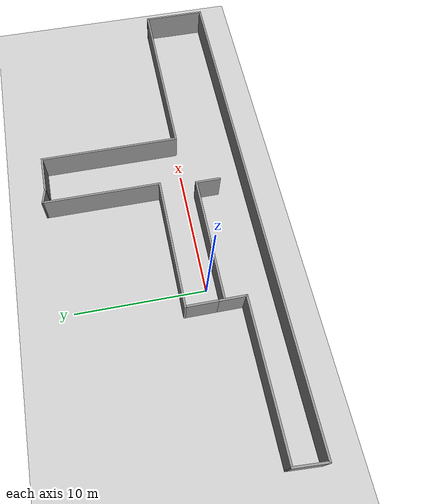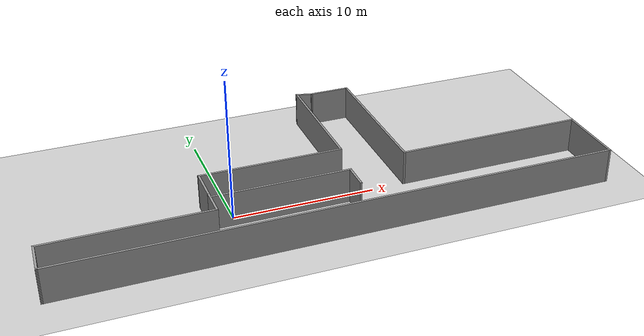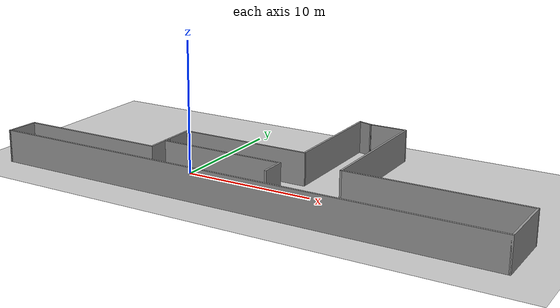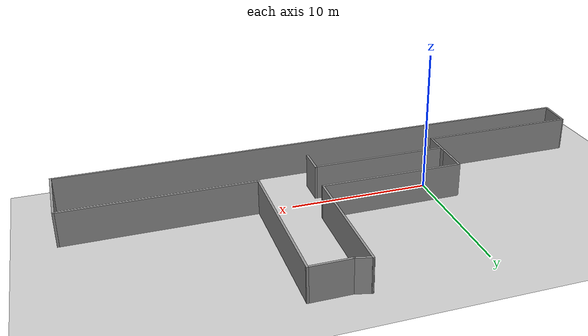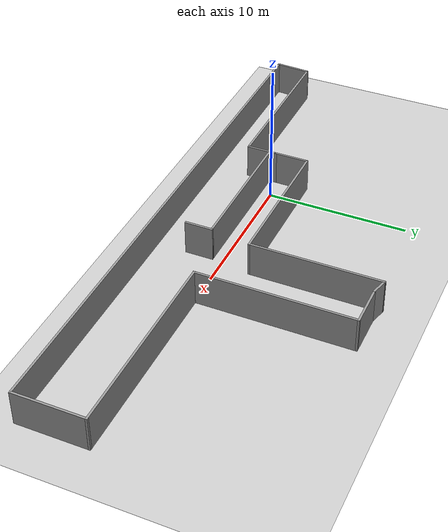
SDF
<sdf version="1.6">
 <world name="default">
  <light name="sun" type="directional">
   <pose>0 0 10 0 -0 0</pose>
   <diffuse>0.8 0.8 0.8 1</diffuse>
   <specular>0.2 0.2 0.2 1</specular>
   <attenuation>
    <range>1000</range>
    <constant>0.9</constant>
    <linear>0.01</linear>
    <quadratic>0.001</quadratic>
   </attenuation>
   <direction>-0.5 0.1 -0.9</direction>
  </light>
  <model name="ground_plane">
   <static>1</static>
   <link name="link">
    <collision name="collision">
     <geometry><plane><normal>0 0 1</normal><size>100 100</size></plane></geometry>
     <surface>
      <contact><collide_bitmask>65535</collide_bitmask></contact>
      <friction><ode><mu>100</mu><mu2>50</mu2></ode></friction>
     </surface>
    </collision>
    <visual name="visual">
     <cast_shadows>0</cast_shadows>
     <geometry><plane><normal>0 0 1</normal><size>100 100</size></plane></geometry>
     <material>
      <script><uri>file://media/materials/scripts/gazebo.material</uri><name>Gazebo/Grey</name></script>
     </material>
    </visual>
   </link>
  </model>
  <gravity>0 0 -9.8</gravity>
  <magnetic_field>6e-06 2.3e-05 -4.2e-05</magnetic_field>
  <atmosphere type="adiabatic"/>
  <physics name="default_physics" default="0" type="ode">
   <max_step_size>0.001</max_step_size>
   <real_time_factor>1</real_time_factor>
   <real_time_update_rate>1000</real_time_update_rate>
  </physics>
  <scene><ambient>0.4 0.4 0.4 1</ambient><background>0.7 0.7 0.7 1</background><shadows>1</shadows></scene>
  <spherical_coordinates>
   <surface_model>EARTH_WGS84</surface_model>
   <latitude_deg>0</latitude_deg>
   <longitude_deg>0</longitude_deg>
   <elevation>0</elevation>
   <heading_deg>0</heading_deg>
  </spherical_coordinates>
  <model name="tbuild_0">
   <pose>6.27677 3.15114 0 0 -0 0</pose>
   <link name="Wall_27">
    <collision name="Wall_27_Collision">
     <geometry><box><size>39 0.15 2.5</size></box></geometry>
     <pose>0 0 1.25 0 -0 0</pose>
    </collision>
    <visual name="Wall_27_Visual">
     <pose>0 0 1.25 0 -0 0</pose>
     <geometry><box><size>39 0.15 2.5</size></box></geometry>
     <material>
      <script><uri>file://media/materials/scripts/gazebo.material</uri><name>Gazebo/Grey</name></script>
      <ambient>1 1 1 1</ambient>
     </material>
     <meta><layer>0</layer></meta>
    </visual>
    <pose>0.002054 -7.99872 0 0 -0 0</pose>
   </link>
   <link name="Wall_28">
    <collision name="Wall_28_Collision">
     <geometry><box><size>5 0.15 2.5</size></box></geometry>
     <pose>0 0 1.25 0 -0 0</pose>
    </collision>
    <visual name="Wall_28_Visual">
     <pose>0 0 1.25 0 -0 0</pose>
     <geometry><box><size>5 0.15 2.5</size></box></geometry>
     <material>
      <script><uri>file://media/materials/scripts/gazebo.material</uri><name>Gazebo/Grey</name></script>
      <ambient>1 1 1 1</ambient>
     </material>
     <meta><layer>0</layer></meta>
    </visual>
    <pose>19.4271 -5.57372 0 0 -0 1.5708</pose>
   </link>
   <link name="Wall_29">
    <collision name="Wall_29_Collision">
     <geometry><box><size>13.5 0.15 2.5</size></box></geometry>
     <pose>0 0 1.25 0 -0 0</pose>
    </collision>
    <visual name="Wall_29_Visual">
     <pose>0 0 1.25 0 -0 0</pose>
     <geometry><box><size>13.5 0.15 2.5</size></box></geometry>
     <material>
      <script><uri>file://media/materials/scripts/gazebo.material</uri><name>Gazebo/Grey</name></script>
      <ambient>1 1 1 1</ambient>
     </material>
     <meta><layer>0</layer></meta>
    </visual>
    <pose>12.7521 -3.14872 0 0 -0 3.14159</pose>
   </link>
   <link name="Wall_30">
    <collision name="Wall_30_Collision">
     <geometry><box><size>11 0.15 2.5</size></box></geometry>
     <pose>0 0 1.25 0 -0 0</pose>
    </collision>
    <visual name="Wall_30_Visual">
     <pose>0 0 1.25 0 -0 0</pose>
     <geometry><box><size>11 0.15 2.5</size></box></geometry>
     <material>
      <script><uri>file://media/materials/scripts/gazebo.material</uri><name>Gazebo/Grey</name></script>
      <ambient>1 1 1 1</ambient>
     </material>
     <meta><layer>0</layer></meta>
    </visual>
    <pose>6.07705 2.27628 0 0 -0 1.5708</pose>
   </link>
   <link name="Wall_31">
    <collision name="Wall_31_Collision">
     <geometry><box><size>3 0.15 2.5</size></box></geometry>
     <pose>0 0 1.25 0 -0 0</pose>
    </collision>
    <visual name="Wall_31_Visual">
     <pose>0 0 1.25 0 -0 0</pose>
     <geometry><box><size>3 0.15 2.5</size></box></geometry>
     <material>
      <script><uri>file://media/materials/scripts/gazebo.material</uri><name>Gazebo/Grey</name></script>
      <ambient>1 1 1 1</ambient>
     </material>
     <meta><layer>0</layer></meta>
    </visual>
    <pose>4.65205 7.70128 0 0 -0 3.14159</pose>
   </link>
   <link name="Wall_32">
    <collision name="Wall_32_Collision">
     <geometry><box><size>1.25 0.15 2.5</size></box></geometry>
     <pose>0 0 1.25 0 -0 0</pose>
    </collision>
    <visual name="Wall_32_Visual">
     <pose>0 0 1.25 0 -0 0</pose>
     <geometry><box><size>1.25 0.15 2.5</size></box></geometry>
     <material>
      <script><uri>file://media/materials/scripts/gazebo.material</uri><name>Gazebo/Grey</name></script>
      <ambient>1 1 1 1</ambient>
     </material>
     <meta><layer>0</layer></meta>
    </visual>
    <pose>2.69579 7.84363 0 0 -0 2.87979</pose>
   </link>
   <link name="Wall_33">
    <collision name="Wall_33_Collision">
     <geometry><box><size>9.25 0.15 2.5</size></box></geometry>
     <pose>0 0 1.25 0 -0 0</pose>
    </collision>
    <visual name="Wall_33_Visual">
     <pose>0 0 1.25 0 -0 0</pose>
     <geometry><box><size>9.25 0.15 2.5</size></box></geometry>
     <material>
      <script><uri>file://media/materials/scripts/gazebo.material</uri><name>Gazebo/Grey</name></script>
      <ambient>1 1 1 1</ambient>
     </material>
     <meta><layer>0</layer></meta>
    </visual>
    <pose>2.16454 3.43598 0 0 0 -1.5708</pose>
   </link>
   <link name="Wall_34">
    <collision name="Wall_34_Collision">
     <geometry><box><size>10.25 0.15 2.5</size></box></geometry>
     <pose>0 0 1.25 0 -0 0</pose>
    </collision>
    <visual name="Wall_34_Visual">
     <pose>0 0 1.25 0 -0 0</pose>
     <geometry><box><size>10.25 0.15 2.5</size></box></geometry>
     <material>
      <script><uri>file://media/materials/scripts/gazebo.material</uri><name>Gazebo/Grey</name></script>
      <ambient>1 1 1 1</ambient>
     </material>
     <meta><layer>0</layer></meta>
    </visual>
    <pose>-2.88546 -1.11402 0 0 -0 3.14159</pose>
   </link>
   <link name="Wall_35">
    <collision name="Wall_35_Collision">
     <geometry><box><size>2.5 0.15 2.5</size></box></geometry>
     <pose>0 0 1.25 0 -0 0</pose>
    </collision>
    <visual name="Wall_35_Visual">
     <pose>0 0 1.25 0 -0 0</pose>
     <geometry><box><size>2.5 0.15 2.5</size></box></geometry>
     <material>
      <script><uri>file://media/materials/scripts/gazebo.material</uri><name>Gazebo/Grey</name></script>
      <ambient>1 1 1 1</ambient>
     </material>
     <meta><layer>0</layer></meta>
    </visual>
    <pose>-7.93546 -2.28902 0 0 0 -1.5708</pose>
   </link>
   <link name="Wall_36">
    <collision name="Wall_36_Collision">
     <geometry><box><size>2.25 0.15 2.5</size></box></geometry>
     <pose>0 0 1.25 0 -0 0</pose>
    </collision>
    <visual name="Wall_36_Visual">
     <pose>0 0 1.25 0 -0 0</pose>
     <geometry><box><size>2.25 0.15 2.5</size></box></geometry>
     <material>
      <script><uri>file://media/materials/scripts/gazebo.material</uri><name>Gazebo/Grey</name></script>
      <ambient>1 1 1 1</ambient>
     </material>
     <meta><layer>0</layer></meta>
    </visual>
    <pose>-7.93546 -4.51402 0 0 0 -1.5708</pose>
   </link>
   <link name="Wall_37">
    <collision name="Wall_37_Collision">
     <geometry><box><size>11.5 0.15 2.5</size></box></geometry>
     <pose>0 0 1.25 0 -0 0</pose>
    </collision>
    <visual name="Wall_37_Visual">
     <pose>0 0 1.25 0 -0 0</pose>
     <geometry><box><size>11.5 0.15 2.5</size></box></geometry>
     <material>
      <script><uri>file://media/materials/scripts/gazebo.material</uri><name>Gazebo/Grey</name></script>
      <ambient>1 1 1 1</ambient>
     </material>
     <meta><layer>0</layer></meta>
    </visual>
    <pose>-13.6105 -5.56402 0 0 -0 3.14159</pose>
   </link>
   <link name="Wall_38">
    <collision name="Wall_38_Collision">
     <geometry><box><size>2.58858 0.15 2.5</size></box></geometry>
     <pose>0 0 1.25 0 -0 0</pose>
    </collision>
    <visual name="Wall_38_Visual">
     <pose>0 0 1.25 0 -0 0</pose>
     <geometry><box><size>2.58858 0.15 2.5</size></box></geometry>
     <material>
      <script><uri>file://media/materials/scripts/gazebo.material</uri><name>Gazebo/Grey</name></script>
      <ambient>1 1 1 1</ambient>
     </material>
     <meta><layer>0</layer></meta>
    </visual>
    <pose>-19.3542 -6.78137 0 0 0 -1.6272</pose>
   </link>
   <link name="Wall_40">
    <collision name="Wall_40_Collision">
     <geometry><box><size>9.75 0.15 2.5</size></box></geometry>
     <pose>0 0 1.25 0 -0 0</pose>
    </collision>
    <visual name="Wall_40_Visual">
     <pose>0 0 1.25 0 -0 0</pose>
     <geometry><box><size>9.75 0.15 2.5</size></box></geometry>
     <material>
      <script><uri>file://media/materials/scripts/gazebo.material</uri><name>Gazebo/Grey</name></script>
      <ambient>1 1 1 1</ambient>
     </material>
     <meta><layer>0</layer></meta>
    </visual>
    <pose>-3.04078 -3.95252 0 0 -0 0</pose>
   </link>
   <link name="Wall_41">
    <collision name="Wall_41_Collision">
     <geometry><box><size>2 0.15 2.5</size></box></geometry>
     <pose>0 0 1.25 0 -0 0</pose>
    </collision>
    <visual name="Wall_41_Visual">
     <pose>0 0 1.25 0 -0 0</pose>
     <geometry><box><size>2 0.15 2.5</size></box></geometry>
     <material>
      <script><uri>file://media/materials/scripts/gazebo.material</uri><name>Gazebo/Grey</name></script>
      <ambient>1 1 1 1</ambient>
     </material>
     <meta><layer>0</layer></meta>
    </visual>
    <pose>1.75922 -4.87752 0 0 0 -1.5708</pose>
   </link>
   <static>1</static>
  </model>
 </world>
</sdf>
